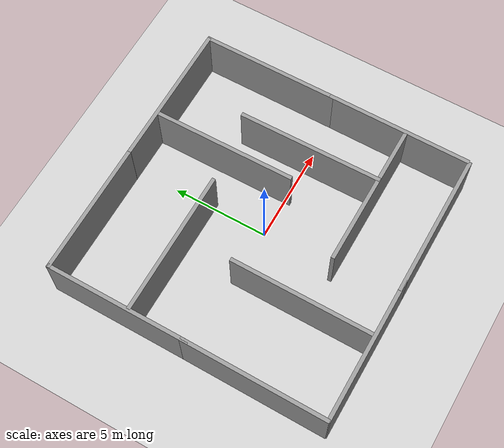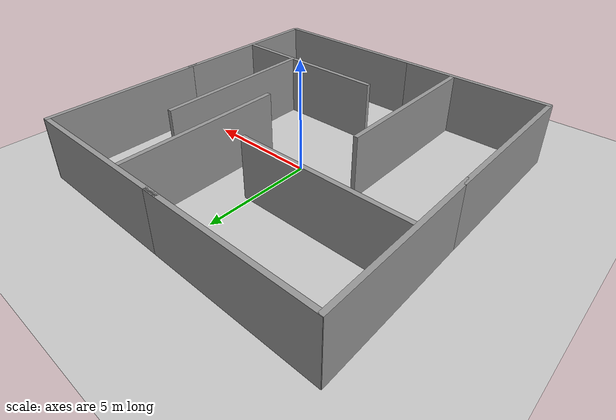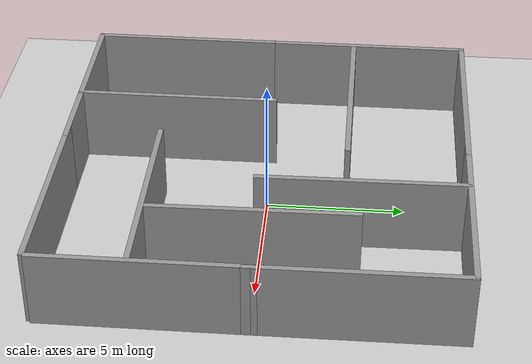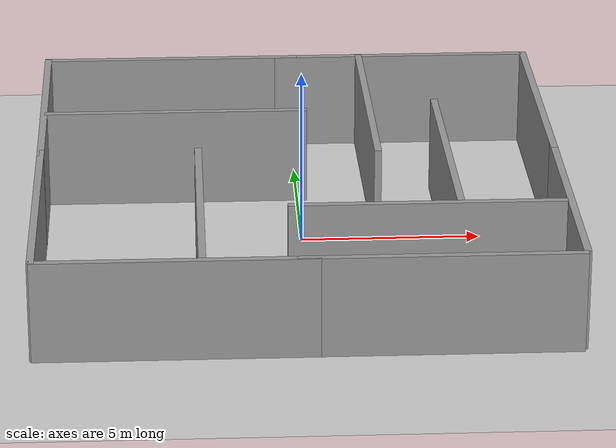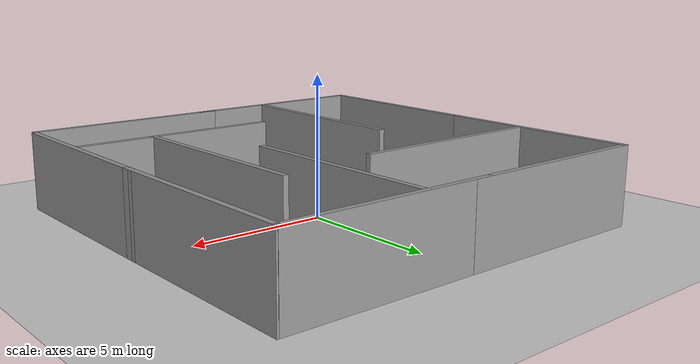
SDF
<sdf version="1.6">
 <world name="GrannyAnnie">
  <light name="sun" type="directional">
   <pose>0 0 10 0 -0 0</pose>
   <diffuse>0.8 0.8 0.8 1</diffuse>
   <specular>0.2 0.2 0.2 1</specular>
   <attenuation>
    <range>1000</range>
    <constant>0.9</constant>
    <linear>0.01</linear>
    <quadratic>0.001</quadratic>
   </attenuation>
   <direction>-0.5 0.1 -0.9</direction>
  </light>
  <model name="ground_plane">
   <static>1</static>
   <link name="link">
    <collision name="collision">
     <geometry><plane><normal>0 0 1</normal><size>100 100</size></plane></geometry>
     <surface><friction><ode><mu>100</mu><mu2>50</mu2></ode></friction></surface>
    </collision>
    <visual name="visual">
     <cast_shadows>0</cast_shadows>
     <geometry><plane><normal>0 0 1</normal><size>100 100</size></plane></geometry>
     <material>
      <script><uri>file://media/materials/scripts/gazebo.material</uri><name>Gazebo/Grey</name></script>
     </material>
    </visual>
    <velocity_decay><linear>0</linear><angular>0</angular></velocity_decay>
   </link>
  </model>
  <physics name="default_physics" default="0" type="ode">
   <max_step_size>0.01</max_step_size>
   <real_time_factor>1</real_time_factor>
   <real_time_update_rate>100</real_time_update_rate>
  </physics>
  <scene><ambient>0.4 0.4 0.4 1</ambient><background>0.7 0.7 0.7 1</background><shadows>1</shadows></scene>
  <spherical_coordinates>
   <surface_model>EARTH_WGS84</surface_model>
   <latitude_deg>0</latitude_deg>
   <longitude_deg>0</longitude_deg>
   <elevation>0</elevation>
   <heading_deg>0</heading_deg>
  </spherical_coordinates>
  <model name="grey_wall_0">
   <static>1</static>
   <link name="link">
    <pose>0 0 1.4 0 -0 0</pose>
    <collision name="collision"><geometry><box><size>7.5 0.2 2.8</size></box></geometry></collision>
    <visual name="visual">
     <cast_shadows>0</cast_shadows>
     <geometry><box><size>7.5 0.2 2.8</size></box></geometry>
     <material>
      <script>
       <uri>model://grey_wall/materials/scripts</uri>
       <uri>model://grey_wall/materials/textures</uri>
       <name>vrc/grey_wall</name>
      </script>
     </material>
    </visual>
    <velocity_decay><linear>0</linear><angular>0</angular></velocity_decay>
   </link>
   <pose>-7.25571 -3.5819 0 0 0 -1.57522</pose>
  </model>
  <model name="grey_wall_1">
   <static>1</static>
   <link name="link">
    <pose>0 0 1.4 0 -0 0</pose>
    <collision name="collision"><geometry><box><size>7.5 0.2 2.8</size></box></geometry></collision>
    <visual name="visual">
     <cast_shadows>0</cast_shadows>
     <geometry><box><size>7.5 0.2 2.8</size></box></geometry>
     <material>
      <script>
       <uri>model://grey_wall/materials/scripts</uri>
       <uri>model://grey_wall/materials/textures</uri>
       <name>vrc/grey_wall</name>
      </script>
     </material>
    </visual>
    <velocity_decay><linear>0</linear><angular>0</angular></velocity_decay>
   </link>
   <pose>3.27943 7.15202 0 0 -0 0</pose>
  </model>
  <model name="grey_wall_2">
   <static>1</static>
   <link name="link">
    <pose>0 0 1.4 0 -0 0</pose>
    <collision name="collision"><geometry><box><size>7.5 0.2 2.8</size></box></geometry></collision>
    <visual name="visual">
     <cast_shadows>0</cast_shadows>
     <geometry><box><size>7.5 0.2 2.8</size></box></geometry>
     <material>
      <script>
       <uri>model://grey_wall/materials/scripts</uri>
       <uri>model://grey_wall/materials/textures</uri>
       <name>vrc/grey_wall</name>
      </script>
     </material>
    </visual>
    <velocity_decay><linear>0</linear><angular>0</angular></velocity_decay>
   </link>
   <pose>-3.57864 -7.27256 0 0 -0 0</pose>
  </model>
  <model name="grey_wall_3">
   <static>1</static>
   <link name="link">
    <pose>0 0 1.4 0 -0 0</pose>
    <collision name="collision"><geometry><box><size>7.5 0.2 2.8</size></box></geometry></collision>
    <visual name="visual">
     <cast_shadows>0</cast_shadows>
     <geometry><box><size>7.5 0.2 2.8</size></box></geometry>
     <material>
      <script>
       <uri>model://grey_wall/materials/scripts</uri>
       <uri>model://grey_wall/materials/textures</uri>
       <name>vrc/grey_wall</name>
      </script>
     </material>
    </visual>
    <velocity_decay><linear>0</linear><angular>0</angular></velocity_decay>
   </link>
   <pose>7.01379 3.49041 0 0 0 -1.566</pose>
  </model>
  <model name="grey_wall_4">
   <static>1</static>
   <link name="link">
    <pose>0 0 1.4 0 -0 0</pose>
    <collision name="collision"><geometry><box><size>7.5 0.2 2.8</size></box></geometry></collision>
    <visual name="visual">
     <cast_shadows>0</cast_shadows>
     <geometry><box><size>7.5 0.2 2.8</size></box></geometry>
     <material>
      <script>
       <uri>model://grey_wall/materials/scripts</uri>
       <uri>model://grey_wall/materials/textures</uri>
       <name>vrc/grey_wall</name>
      </script>
     </material>
    </visual>
    <velocity_decay><linear>0</linear><angular>0</angular></velocity_decay>
   </link>
   <pose>7.03023 -3.4783 0 0 0 -1.5708</pose>
  </model>
  <model name="grey_wall_5">
   <static>1</static>
   <link name="link">
    <pose>0 0 1.4 0 -0 0</pose>
    <collision name="collision"><geometry><box><size>7.5 0.2 2.8</size></box></geometry></collision>
    <visual name="visual">
     <cast_shadows>0</cast_shadows>
     <geometry><box><size>7.5 0.2 2.8</size></box></geometry>
     <material>
      <script>
       <uri>model://grey_wall/materials/scripts</uri>
       <uri>model://grey_wall/materials/textures</uri>
       <name>vrc/grey_wall</name>
      </script>
     </material>
    </visual>
    <velocity_decay><linear>0</linear><angular>0</angular></velocity_decay>
   </link>
   <pose>3.29916 -7.27083 0 0 -0 0</pose>
  </model>
  <model name="grey_wall_6">
   <static>1</static>
   <link name="link">
    <pose>0 0 1.4 0 -0 0</pose>
    <collision name="collision"><geometry><box><size>7.5 0.2 2.8</size></box></geometry></collision>
    <visual name="visual">
     <cast_shadows>0</cast_shadows>
     <geometry><box><size>7.5 0.2 2.8</size></box></geometry>
     <material>
      <script>
       <uri>model://grey_wall/materials/scripts</uri>
       <uri>model://grey_wall/materials/textures</uri>
       <name>vrc/grey_wall</name>
      </script>
     </material>
    </visual>
    <velocity_decay><linear>0</linear><angular>0</angular></velocity_decay>
   </link>
   <pose>-7.23773 3.48917 0 0 -0 1.5708</pose>
  </model>
  <gravity>0 0 -9.8</gravity>
  <magnetic_field>6e-06 2.3e-05 -4.2e-05</magnetic_field>
  <atmosphere type="adiabatic"/>
  <model name="grey_wall">
   <static>1</static>
   <link name="link">
    <pose>0 0 1.4 0 -0 0</pose>
    <collision name="collision"><geometry><box><size>7.5 0.2 2.8</size></box></geometry></collision>
    <visual name="visual">
     <cast_shadows>0</cast_shadows>
     <geometry><box><size>7.5 0.2 2.8</size></box></geometry>
     <material>
      <script>
       <uri>model://grey_wall/materials/scripts</uri>
       <uri>model://grey_wall/materials/textures</uri>
       <name>vrc/grey_wall</name>
      </script>
     </material>
    </visual>
   </link>
   <pose>-3.56705 7.15349 0 0 -0 0</pose>
  </model>
  <model name="grey_wall_7">
   <static>1</static>
   <link name="link">
    <pose>0 0 1.4 0 -0 0</pose>
    <collision name="collision"><geometry><box><size>7.5 0.2 2.8</size></box></geometry></collision>
    <visual name="visual">
     <cast_shadows>0</cast_shadows>
     <geometry><box><size>7.5 0.2 2.8</size></box></geometry>
     <material>
      <script>
       <uri>model://grey_wall/materials/scripts</uri>
       <uri>model://grey_wall/materials/textures</uri>
       <name>vrc/grey_wall</name>
      </script>
     </material>
    </visual>
   </link>
   <pose>3.19967 -3.89593 0 0 -0 0</pose>
  </model>
  <model name="grey_wall_8">
   <static>1</static>
   <link name="link">
    <pose>0 0 1.4 0 -0 0</pose>
    <collision name="collision"><geometry><box><size>7.5 0.2 2.8</size></box></geometry></collision>
    <visual name="visual">
     <cast_shadows>0</cast_shadows>
     <geometry><box><size>7.5 0.2 2.8</size></box></geometry>
     <material>
      <script>
       <uri>model://grey_wall/materials/scripts</uri>
       <uri>model://grey_wall/materials/textures</uri>
       <name>vrc/grey_wall</name>
      </script>
     </material>
    </visual>
   </link>
   <pose>-3.46509 2.88903 0 0 -0 0</pose>
  </model>
  <model name="grey_wall_9">
   <static>1</static>
   <link name="link">
    <pose>0 0 1.4 0 -0 0</pose>
    <collision name="collision"><geometry><box><size>7.5 0.2 2.8</size></box></geometry></collision>
    <visual name="visual">
     <cast_shadows>0</cast_shadows>
     <geometry><box><size>7.5 0.2 2.8</size></box></geometry>
     <material>
      <script>
       <uri>model://grey_wall/materials/scripts</uri>
       <uri>model://grey_wall/materials/textures</uri>
       <name>vrc/grey_wall</name>
      </script>
     </material>
    </visual>
   </link>
   <pose>4.04261 -0.229846 0 0 -0 1.58297</pose>
  </model>
  <model name="grey_wall_10">
   <static>1</static>
   <link name="link">
    <pose>0 0 1.4 0 -0 0</pose>
    <collision name="collision"><geometry><box><size>7.5 0.2 2.8</size></box></geometry></collision>
    <visual name="visual">
     <cast_shadows>0</cast_shadows>
     <geometry><box><size>7.5 0.2 2.8</size></box></geometry>
     <material>
      <script>
       <uri>model://grey_wall/materials/scripts</uri>
       <uri>model://grey_wall/materials/textures</uri>
       <name>vrc/grey_wall</name>
      </script>
     </material>
    </visual>
   </link>
   <pose>-2.87902 -3.60626 0 0 -0 1.57016</pose>
  </model>
  <model name="grey_wall_11">
   <static>1</static>
   <link name="link">
    <pose>0 0 1.4 0 -0 0</pose>
    <collision name="collision"><geometry><box><size>7.5 0.2 2.8</size></box></geometry></collision>
    <visual name="visual">
     <cast_shadows>0</cast_shadows>
     <geometry><box><size>7.5 0.2 2.8</size></box></geometry>
     <material>
      <script>
       <uri>model://grey_wall/materials/scripts</uri>
       <uri>model://grey_wall/materials/textures</uri>
       <name>vrc/grey_wall</name>
      </script>
     </material>
    </visual>
   </link>
   <pose>2.07911 3.45648 0 0 -0 1.58136</pose>
  </model>
 </world>
</sdf>
